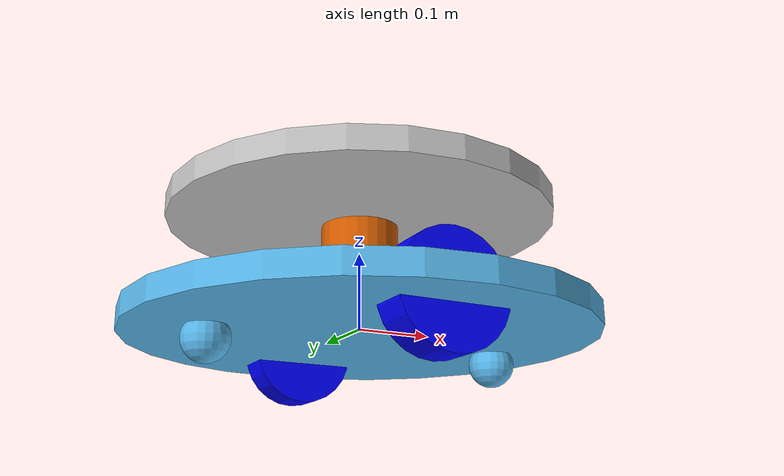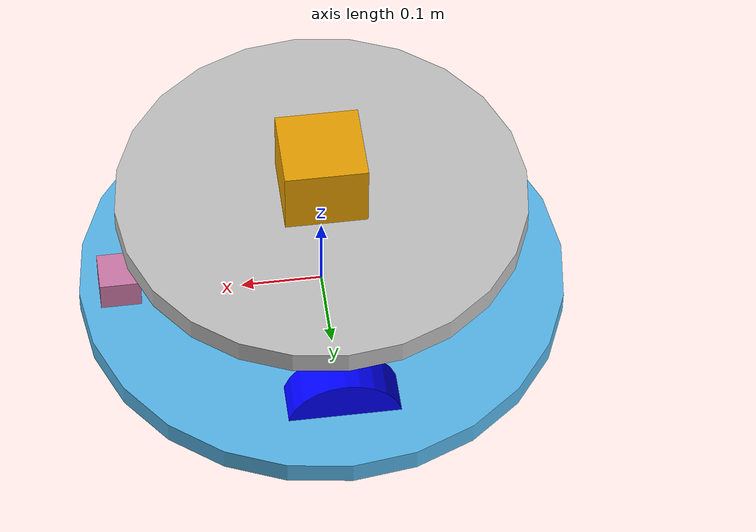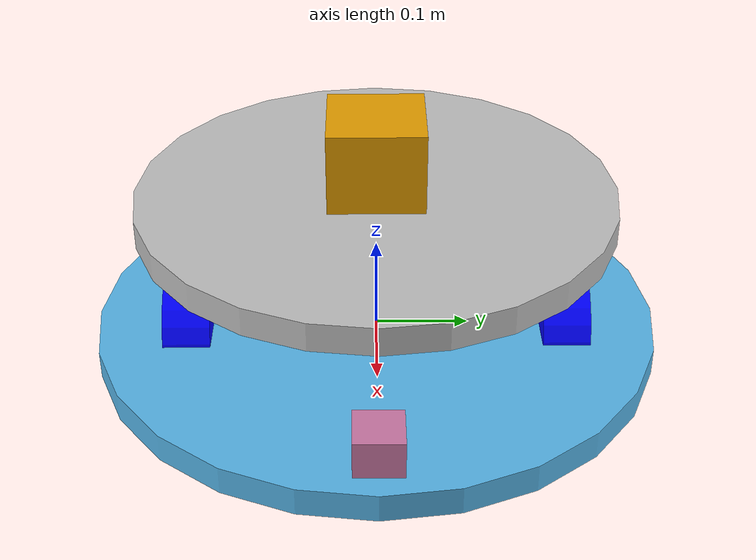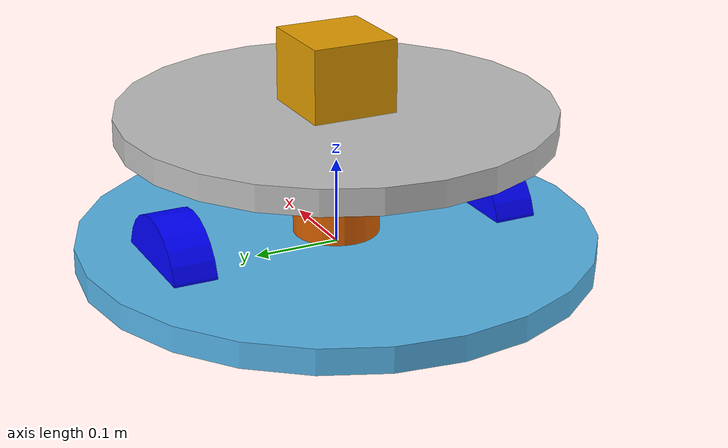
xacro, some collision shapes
<?xml version='1.0'?>

<robot name="my_robot" xmlns:xacro="http://www.ros.org/wiki/xacro">
<xacro:include filename="$(find my_robot)/urdf/my_robot.gazebo" />
<material name="blue">
    <color rgba= "0 0 1 1"/>
  </material>
  <material name="grey">
    <color rgba="0.75 0.75 0.75 1"/>
  </material>

  <link name="robot_footprint"></link>

  <joint name="robot_footprint_joint" type="fixed">
    <origin xyz="0 0 0" rpy="0 0 0" />
    <parent link="robot_footprint"/>
    <child link="chassis" />
  </joint>

  <link name='chassis'>
    <pose>0 0 0.1 0 0 0</pose>

    <inertial>
      <mass value="15.0"/>
      <origin xyz="0.0 0 0" rpy=" 0 0 0"/>
      <inertia
          ixx="0.1" ixy="0" ixz="0"
          iyy="0.1" iyz="0"
          izz="0.1"
      />
    </inertial>

    <collision name='collision'>
      <origin xyz="0 0 0" rpy=" 0 0 0"/>
      <geometry>
        <cylinder radius="0.3" length="0.03"/>
      </geometry>
    </collision>

    <visual name='chassis_visual'>
      <origin xyz="0 0 0" rpy=" 0 0 0"/>
      <geometry>
        <cylinder radius="0.3" length="0.03"/>
      </geometry>
    </visual>

    <collision name='back_caster_collision'>
      <origin xyz="-0.2 0 -0.03" rpy=" 0 0 0"/>
      <geometry>
        <sphere radius="0.03"/>
      </geometry>
    </collision>

    <visual name='back_caster_visual'>
      <origin xyz="-0.2 0 -0.03" rpy=" 0 0 0"/>
      <geometry>
        <sphere radius="0.03"/>
      </geometry>
    </visual>

    <collision name='front_caster_collision'>
      <origin xyz="0.2 0 -0.05" rpy=" 0 0 0"/>
      <geometry>
        <sphere radius="0.03"/>
      </geometry>
    </collision>

    <visual name='front_caster_visual'>
      <origin xyz="0.2 0 -0.03" rpy=" 0 0 0"/>
      <geometry>
        <sphere radius="0.03"/>
      </geometry>
    </visual>

  </link>

  <link name='left_wheel'>

  <inertial>
    <mass value="5.0"/>
    <origin xyz="0.0 0 0" rpy=" 0 1.5707 1.5707"/>
    <inertia
        ixx="0.1" ixy="0" ixz="0"
        iyy="0.1" iyz="0"
        izz="0.1"
    />
  </inertial>

  <collision name='collission_left_wheel'>
    <origin xyz="0 0 0" rpy="0 1.5707 1.5707"/>
    <geometry>
      <cylinder radius="0.07" length="0.05"/>
    </geometry>
  </collision>

  <visual name='collission_left_wheel'>
    <origin xyz="0 0 0" rpy="0 1.5707 1.5707"/>
    <geometry>
      <cylinder radius="0.07" length="0.05"/>
    </geometry>
    <material name="blue"/>
  </visual>

  </link>

<joint type="continuous" name="left_wheel_hinge">
    <origin xyz="0 0.2 0" rpy="0 0 0"/>
    <child link="left_wheel"/>
    <parent link="chassis"/>
    <axis xyz="0 1 0" rpy="0 0 0"/>
    <limit effort="10000" velocity="1000"/>
    <dynamics damping="1.0" friction="1.0"/>
  </joint>

  <link name='right_wheel'>

  <inertial>
    <mass value="5.0"/>
    <origin xyz="0.0 0.0 0" rpy="0 1.5707 1.5707"/>
    <inertia
        ixx="0.1" ixy="0" ixz="0"
        iyy="0.1" iyz="0"
        izz="0.1"
    />
  </inertial>

  <collision name='collission_right_wheel'>
    <origin xyz="0 0.0 0" rpy="0 1.5707 1.5707"/>
    <geometry>
      <cylinder radius="0.07" length="0.05"/>
    </geometry>
  </collision>

  <visual name='collission_right_wheel'>
    <origin xyz="0 0 0" rpy="0 1.5707 1.5707"/>
    <geometry>
      <cylinder radius="0.07" length="0.05"/>
    </geometry>
  <material name="blue"/>
  </visual>

  </link>

 <joint type="continuous" name="right_wheel_hinge">
    <origin xyz="0 -0.2 0" rpy="0 0 0"/>
    <child link="right_wheel"/>
    <parent link="chassis"/>
    <axis xyz="0 1 0" rpy="0 0 0"/>
    <limit effort="10000" velocity="1000"/>
    <dynamics damping="1.0" friction="1.0"/>
  </joint>

<link name='base_upper'>
  <origin xyz="0.0 0.0 0.0" rpy="0.0 0.0 0.0"/>

  <inertial>
    <mass value="0.001"/>
    <origin xyz="0.0 0 0" rpy="0 0 0"/>
    <inertia
        ixx="0.000001" ixy="0" ixz="0"
        iyy="0.000001" iyz="0"
        izz="0.000001"
    />
  </inertial>

  <collision name='collision_base_upper'>
    <origin xyz="0 0 0.15" rpy="0 0 0"/>
    <geometry>
      <cylinder radius="0.25" length="0.03"/>
    </geometry>
  </collision>

  <visual name='collision_base_upper'>
    <origin xyz="0 0 0.15" rpy="0 0 0"/>
    <geometry>
      <cylinder radius="0.25" length="0.03"/>
    </geometry>
    <material name="grey"/>
  </visual>

  </link>

 <joint type="fixed" name="base_upper_joint">
    <origin xyz="0 0 0" rpy="0 0 0"/>
    <child link="base_upper"/>
    <parent link="chassis"/>
    <axis xyz="0 1 0" rpy="0 0 0"/>
    <limit effort="10000" velocity="1000"/>
    <dynamics damping="1.0" friction="1.0"/>
  </joint>

<link name='base_support'>
  <origin xyz="0.0 0.0 0.0" rpy="0.0 0.0 0.0"/>

  <inertial>
    <mass value="0.0001"/>
    <origin xyz="0.0 0 0" rpy="0 0 0"/>
    <inertia
        ixx="0.000001" ixy="0" ixz="0"
        iyy="0.000001" iyz="0"
        izz="0.000001"
    />
  </inertial>

  <collision name='collision_base_support'>
    <origin xyz="0 0 0.085" rpy="0 0 0"/>
    <geometry>
      <cylinder radius="0.05" length="0.15"/>
    </geometry>
  </collision>

  <visual name='collision_base_support'>
    <origin xyz="0 0 0.085" rpy="0 0 0"/>
    <geometry>
      <cylinder radius="0.05" length="0.15"/>
    </geometry>
  </visual>

  </link>

 <joint type="fixed" name="base_support">
    <origin xyz="0 0 0" rpy="0 0 0"/>
    <child link="base_support"/>
    <parent link="chassis"/>
    <axis xyz="0 1 0" rpy="0 0 0"/>
    <limit effort="10000" velocity="1000"/>
    <dynamics damping="1.0" friction="1.0"/>
  </joint>

  <link name='camera'>
  <origin xyz="0.0 0.0 0.0" rpy="0.0 0.0 0.0"/>

  <inertial>
    <mass value="0.1"/>
    <origin xyz="0.0 0 0" rpy="0 0 0"/>
    <inertia
        ixx="0.000001" ixy="0" ixz="0"
        iyy="0.000001" iyz="0"
        izz="0.000001"
    />
  </inertial>

  <collision name='collission_right_wheel'>
    <origin xyz="0 0 0" rpy="0 0 0"/>
    <geometry>
      <box size="0.05 0.05 0.05"/>
    </geometry>
  </collision>

  <visual name='collission_right_wheel'>
    <origin xyz="0 0 0" rpy="0 0 0"/>
    <geometry>
      <box size="0.05 0.05 0.05"/>
    </geometry>
  </visual>

  </link>

 <joint type="fixed" name="camera_joint">
    <origin xyz="0.25 0 0.03" rpy="0 0 0"/>
    <child link="camera"/>
    <parent link="chassis"/>
    <axis xyz="0 1 0" rpy="0 0 0"/>
    <limit effort="10000" velocity="1000"/>
    <dynamics damping="1.0" friction="1.0"/>
  </joint>

<joint name="camera_optical_joint" type="fixed">
    <origin xyz="0 0 0" rpy="-1.5707 0 -1.5707"/>
    <parent link="chassis"/>
    <child link="camera_link_optical"/>
  </joint>

  <link name="camera_link_optical">
  </link>

<link name='hokuyo'>
  <origin xyz="0.0 0.0 0.0" rpy="0.0 0.0 0.0"/>

  <inertial>
    <mass value="0.00001"/>
    <origin xyz="0.0 0 0" rpy="0 0 0"/>
    <inertia
        ixx="0.000001" ixy="0" ixz="0"
        iyy="0.000001" iyz="0"
        izz="0.000001"
    />
  </inertial>

  <collision name='collission_hokuyo'>
    <origin xyz="0 0 0" rpy="0 0 0"/>
    <geometry>
      <box size="0.1 0.1 0.1"/>
    </geometry>
  </collision>

  <visual name='collission_hokuyo'>
    <origin xyz="0 0 0" rpy="0 0 0"/>
    <geometry>
      <mesh filename="package://my_robot/meshes/hokuyo.dae"/>
    </geometry>
  </visual>

  </link>

 <joint type="fixed" name="hokuyo_joint">
    <origin xyz="0 0 0.2" rpy="0 0 0"/>
    <child link="hokuyo"/>
    <parent link="chassis"/>
    <axis xyz="0 1 0" rpy="0 0 0"/>
    <limit effort="10000" velocity="1000"/>
    <dynamics damping="1.0" friction="1.0"/>
  </joint>

</robot>
